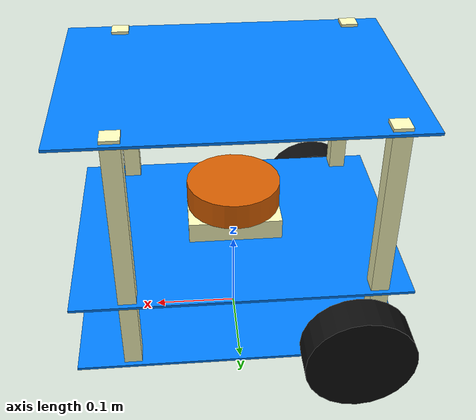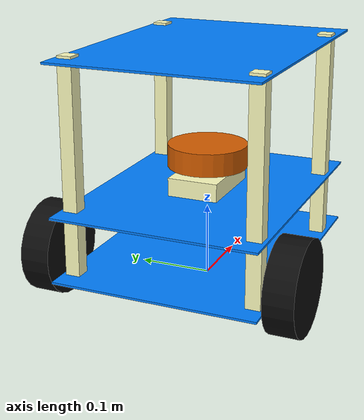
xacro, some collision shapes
<?xml version="1.0"?>

<robot name="thesis_robot" xmlns:xacro="http://ros.org/wiki/xacro">

  <!-- link gốc sẽ ko có joint  -->
  <link name="base_footprint"/>

  <joint name="base_joint" type="fixed">
    <parent link="base_footprint"/>
    <child link="base_link"/>
    <origin xyz="0.0 0.0 0.0" rpy="0 0 0"/>
  </joint>

<!-- Base Link -->
<!-- Vì ko đặt riêng link = "base_footprint" nên mọi mô tả (geometry) đều được tính từ tâm [0,0,0] theo cả 3 chiều nên khi tính độ cao phải chia /2 -->
  <link name="base_link">
    <visual>
      <origin xyz="0 0 0.0365" rpy="0 0 0" />
      <geometry>
          <box size="0.3757 0.280 0.003"/> <!-- Tấm Nhôm AL = 3mm -->
      </geometry>
      <material name="blue">
        <color rgba="0 0.5 1 1"/>
      </material>
    </visual>
    <!-- Khu vực va chạm = Cả khối robot, Chiều cao toàn bộ = 33cm-->
    <collision>
       <origin xyz="0 0 0.165" rpy="0 0 0" />
      <geometry>
        <box size="0.3757 0.280 0.33"/>
      </geometry>
    </collision>

    <!-- Thử nghiệm quán tính cho Gazebo : Khoi luong ( = 5.62 kg)-->

    <!-- Caster -->
    <!-- Bánh xe caster đường kính bằng 2 bánh xe kia, rộng 4cm, xyz = 9.5cm, 0, 6.25cm-->
    <visual name="caster">
      <origin xyz="0.095 0 0.0625" rpy="1.570796 0 0" />
      <geometry>
          <cylinder length="0.04" radius="0.0625" />
      </geometry>
      <material name="black">
        <color rgba="0.05 0.05 0.05 1"/>
      </material>
    </visual>

    <!-- Tam phia tren de MCU + Linux -->
    <visual name="base_level1">
      <origin xyz="0 0 0.125" rpy="0 0 0" />
      <geometry>
          <box size="0.3757 0.280 0.003"/> <!-- Tấm Nhôm AL = 3mm -->
      </geometry>
      <material name="blue">
        <color rgba="0 0.5 1 1"/>
      </material>
    </visual>

     <!-- Tam phia tren cung -->
    <visual name="base_level2">
      <origin xyz="0 0 0.325" rpy="0 0 0" /> <!--125+200=325cm-->
      <geometry>
          <box size="0.3757 0.280 0.003"/> <!-- Tấm Nhôm AL = 3mm -->
      </geometry>
      <material name="blue">
        <color rgba="0 0.5 1 1"/>
      </material>
    </visual>

     <!-- 4 cot khung robot -->
    <visual name="row1">
      <origin xyz="0.125 0.125 0.180" rpy="0 0 0" />
      <geometry>
          <box size="0.02 0.02 0.3"/>
      </geometry>
      <material name="yellow">
        <color rgba="1 1 0.75 1"/>
      </material>
    </visual>

    <visual name="row2">
      <origin xyz="-0.150 -0.125 0.180" rpy="0 0 0" />
      <geometry>
          <box size="0.02 0.02 0.3"/>
      </geometry>
      <material name="yellow">
        <color rgba="1 1 0.75 1"/>
      </material>
    </visual>

    <visual name="row3">
      <origin xyz="-0.150 0.125 0.180" rpy="0 0 0" />
      <geometry>
          <box size="0.02 0.02 0.3"/>
      </geometry>
      <material name="yellow">
        <color rgba="1 1 0.75 1"/>
      </material>
      </visual>

    <visual name="row4">
      <origin xyz="0.125 -0.125 0.180" rpy="0 0 0" />
      <geometry>
          <box size="0.02 0.02 0.3"/>
      </geometry>
      <material name="yellow">
        <color rgba="1 1 0.75 1"/>
      </material>
    </visual>

    <!-- De phia duoi Lidar -->
    <visual name="DeLidar">
      <origin xyz="0 0 0.140" rpy="0 0 0" />
      <geometry>
          <box size="0.11 0.07 0.025"/>
      </geometry>
      <material name="yellow">
        <color rgba="1 1 0.75 1"/>
      </material>
    </visual>
  </link>

  <!-- Left Wheel: wheel_left_joint && wheel_left_link -->
  <link name="wheel_left_link">
    <visual>
      <origin xyz="0 0 0" rpy="1.570796 0 0" />
      <geometry>
          <cylinder length="0.04" radius="0.0625" />
      </geometry>
      <material name="black"/>
    </visual>

    <collision>
      <origin xyz="0 0 0" rpy="1.570796 0 0" />
      <geometry>
        <cylinder length="0.04" radius="0.0625" />
      </geometry>
    </collision>

    <inertial>
			<mass value="0.1"/>
			<origin xyz="0 0 0"/>
			<inertia ixx="0.012411765597" ixy="-0.000711733678" ixz="0.00050272983"
				 iyy="0.015218160428" iyz="-0.000004273467" izz="0.011763977943"/>
  	</inertial>
  </link>

  <!-- Các khớp (join) có kiểu: type="continuous" cần được pub lên (sensor_msgs::JointState) -->
  <joint name="wheel_left_joint" type="continuous">
    <parent link="base_link"/>
    <child link="wheel_left_link"/>
    <origin xyz="-0.12535 0.165 0.0625" rpy="0 0 0" />
    <axis xyz="0 1 0" />
  </joint>

    <!-- Right Wheel : wheel_right_joint && wheel_right_link-->
  <link name="wheel_right_link">
    <visual>
      <origin xyz="0 0 0" rpy="1.570796 0 0" />
      <geometry>
          <cylinder length="0.04" radius="0.0625" />
      </geometry>
      <material name="black">
        <color rgba="0.05 0.05 0.05 1"/>
      </material>
    </visual>

    <collision>
      <origin xyz="0 0 0" rpy="1.570796 0 0" />
      <geometry>
        <cylinder length="0.04" radius="0.0625" />
      </geometry>
    </collision>

    <inertial>
			<mass value="0.1"/>
			<origin xyz="0 0 0"/>
			<inertia ixx="0.012411765597" ixy="-0.000711733678" ixz="0.00050272983"
				 iyy="0.015218160428" iyz="-0.000004273467" izz="0.011763977943"/>
  	</inertial>

  </link>

  <!-- Các khớp (join) có kiểu: type="continuous" cần được pub lên (sensor_msgs::JointState) -->
  <joint name="wheel_right_joint" type="continuous">
    <parent link="base_link"/>
    <child link="wheel_right_link"/>
    <origin xyz="-0.12535 -0.165 0.0625" rpy="0 0 0" />
    <axis xyz="0 1 0" />
  </joint>

  <!-- IMU -->
  <joint name="imu_joint" type="fixed">
    <parent link="base_link"/>
    <child link="imu_link"/>
    <!-- cho imu == odom -->
    <origin xyz="0 0 0.0365" rpy="0 0 0" />
  </joint>

  <link name="imu_link"/>

  <!-- Lidar : Đang để nhầm chiều, xoay 180 độ => rpy="0 0 3.14159" -->
  <joint name="scan_joint" type="fixed">
    <parent link="base_link"/>
    <child link="base_scan"/>
    <origin xyz="0 0 0.175" rpy="0 0 3.14159"/>  <!-- Lidar at center, high = 17.5cm; chiều đặt đang nhầm 180 độ -->
  </joint>

  <link name="base_scan">
    <visual>
      <origin xyz="0 0 0.0" rpy="0 0 3.14159"/>   <!-- Quay khối vật lý 180 độ # joint -->
      <geometry>
        <mesh filename="package://thesis_robot/meshes/lds.stl" scale="0.001 0.001 0.001"/>
      </geometry>
      <material name="dark"/>
    </visual>

    <collision>
      <origin xyz="0 0 0" rpy="0 0 0"/>
      <geometry>
        <cylinder length="0.0315" radius="0.055"/> <!--Chỉ cần đưa ra kích thước, chiều cao khối chạy theo chiều cao của joint-->
      </geometry>
    </collision>

    <inertial>
      <mass value="0.114" />
      <origin xyz="0 0 0" />
      <inertia ixx="0.001" ixy="0.0" ixz="0.0"
               iyy="0.001" iyz="0.0"
               izz="0.001" />
    </inertial>
  </link>

</robot>
